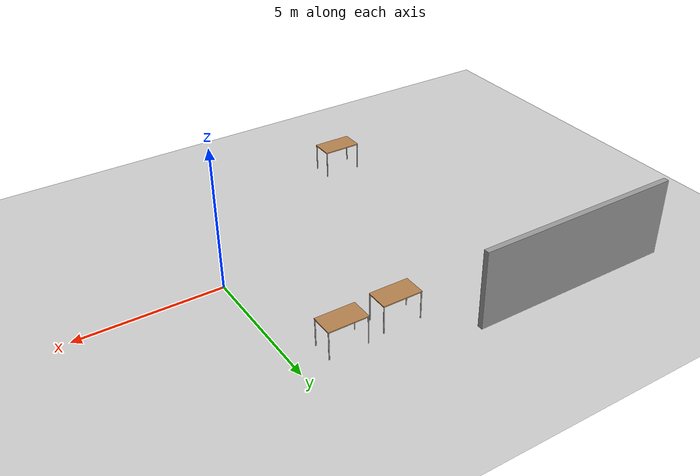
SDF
<sdf version="1.7">
 <world name="default">
  <model name="ground_plane">
   <static>1</static>
   <link name="link">
    <collision name="collision">
     <geometry><plane><normal>0 0 1</normal><size>100 100</size></plane></geometry>
     <surface><friction><ode><mu>100</mu><mu2>50</mu2></ode></friction></surface>
    </collision>
    <visual name="visual">
     <cast_shadows>0</cast_shadows>
     <geometry><plane><normal>0 0 1</normal><size>100 100</size></plane></geometry>
     <material>
      <script><uri>file://media/materials/scripts/gazebo.material</uri><name>Gazebo/Grey</name></script>
     </material>
    </visual>
   </link>
  </model>
  <model name="table">
   <static>0</static>
   <link name="link">
    <collision name="surface">
     <pose>0 0 1 0 -0 0</pose>
     <geometry><box><size>1.5 0.8 0.03</size></box></geometry>
     <surface><friction><ode><mu>0.6</mu><mu2>0.6</mu2></ode></friction></surface>
    </collision>
    <visual name="visual1">
     <pose>0 0 1 0 -0 0</pose>
     <geometry><box><size>1.4 0.8 0.04</size></box></geometry>
     <material>
      <script><uri>file://media/materials/scripts/gazebo.material</uri><name>Gazebo/Wood</name></script>
     </material>
    </visual>
    <collision name="front_left_leg">
     <pose>0.68 0.38 0.5 0 -0 0</pose>
     <geometry><cylinder><radius>0.02</radius><length>1</length></cylinder></geometry>
    </collision>
    <visual name="front_left_leg">
     <pose>0.68 0.38 0.5 0 -0 0</pose>
     <geometry><cylinder><radius>0.02</radius><length>1</length></cylinder></geometry>
     <material>
      <script><uri>file://media/materials/scripts/gazebo.material</uri><name>Gazebo/Grey</name></script>
     </material>
    </visual>
    <collision name="front_right_leg">
     <pose>0.68 -0.38 0.5 0 -0 0</pose>
     <geometry><cylinder><radius>0.02</radius><length>1</length></cylinder></geometry>
    </collision>
    <visual name="front_right_leg">
     <pose>0.68 -0.38 0.5 0 -0 0</pose>
     <geometry><cylinder><radius>0.02</radius><length>1</length></cylinder></geometry>
     <material>
      <script><uri>file://media/materials/scripts/gazebo.material</uri><name>Gazebo/Grey</name></script>
     </material>
    </visual>
    <collision name="back_right_leg">
     <pose>-0.68 -0.38 0.5 0 -0 0</pose>
     <geometry><cylinder><radius>0.02</radius><length>1</length></cylinder></geometry>
    </collision>
    <visual name="back_right_leg">
     <pose>-0.68 -0.38 0.5 0 -0 0</pose>
     <geometry><cylinder><radius>0.02</radius><length>1</length></cylinder></geometry>
     <material>
      <script><uri>file://media/materials/scripts/gazebo.material</uri><name>Gazebo/Grey</name></script>
     </material>
    </visual>
    <collision name="back_left_leg">
     <pose>-0.68 0.38 0.5 0 -0 0</pose>
     <geometry><cylinder><radius>0.02</radius><length>1</length></cylinder></geometry>
    </collision>
    <visual name="back_left_leg">
     <pose>-0.68 0.38 0.5 0 -0 0</pose>
     <geometry><cylinder><radius>0.02</radius><length>1</length></cylinder></geometry>
     <material>
      <script><uri>file://media/materials/scripts/gazebo.material</uri><name>Gazebo/Grey</name></script>
     </material>
    </visual>
    <inertial>
     <inertia><ixx>1</ixx><ixy>0</ixy><ixz>0</ixz><iyy>1</iyy><iyz>0</iyz><izz>1</izz></inertia>
     <mass>1</mass>
    </inertial>
   </link>
   <pose>-1.68201 4.48681 -9e-06 0 -1e-06 0</pose>
  </model>
  <model name="table_0">
   <static>0</static>
   <link name="link">
    <collision name="surface">
     <pose>0 0 1 0 -0 0</pose>
     <geometry><box><size>1.5 0.8 0.03</size></box></geometry>
     <surface><friction><ode><mu>0.6</mu><mu2>0.6</mu2></ode></friction></surface>
    </collision>
    <visual name="visual1">
     <pose>0 0 1 0 -0 0</pose>
     <geometry><box><size>1.4 0.8 0.04</size></box></geometry>
     <material>
      <script><uri>file://media/materials/scripts/gazebo.material</uri><name>Gazebo/Wood</name></script>
     </material>
    </visual>
    <collision name="front_left_leg">
     <pose>0.68 0.38 0.5 0 -0 0</pose>
     <geometry><cylinder><radius>0.02</radius><length>1</length></cylinder></geometry>
    </collision>
    <visual name="front_left_leg">
     <pose>0.68 0.38 0.5 0 -0 0</pose>
     <geometry><cylinder><radius>0.02</radius><length>1</length></cylinder></geometry>
     <material>
      <script><uri>file://media/materials/scripts/gazebo.material</uri><name>Gazebo/Grey</name></script>
     </material>
    </visual>
    <collision name="front_right_leg">
     <pose>0.68 -0.38 0.5 0 -0 0</pose>
     <geometry><cylinder><radius>0.02</radius><length>1</length></cylinder></geometry>
    </collision>
    <visual name="front_right_leg">
     <pose>0.68 -0.38 0.5 0 -0 0</pose>
     <geometry><cylinder><radius>0.02</radius><length>1</length></cylinder></geometry>
     <material>
      <script><uri>file://media/materials/scripts/gazebo.material</uri><name>Gazebo/Grey</name></script>
     </material>
    </visual>
    <collision name="back_right_leg">
     <pose>-0.68 -0.38 0.5 0 -0 0</pose>
     <geometry><cylinder><radius>0.02</radius><length>1</length></cylinder></geometry>
    </collision>
    <visual name="back_right_leg">
     <pose>-0.68 -0.38 0.5 0 -0 0</pose>
     <geometry><cylinder><radius>0.02</radius><length>1</length></cylinder></geometry>
     <material>
      <script><uri>file://media/materials/scripts/gazebo.material</uri><name>Gazebo/Grey</name></script>
     </material>
    </visual>
    <collision name="back_left_leg">
     <pose>-0.68 0.38 0.5 0 -0 0</pose>
     <geometry><cylinder><radius>0.02</radius><length>1</length></cylinder></geometry>
    </collision>
    <visual name="back_left_leg">
     <pose>-0.68 0.38 0.5 0 -0 0</pose>
     <geometry><cylinder><radius>0.02</radius><length>1</length></cylinder></geometry>
     <material>
      <script><uri>file://media/materials/scripts/gazebo.material</uri><name>Gazebo/Grey</name></script>
     </material>
    </visual>
    <inertial>
     <inertia><ixx>1</ixx><ixy>0</ixy><ixz>0</ixz><iyy>1</iyy><iyz>0</iyz><izz>1</izz></inertia>
     <mass>1</mass>
    </inertial>
   </link>
   <pose>-3.67259 4.36128 -1e-06 0 1e-06 0</pose>
  </model>
  <model name="table_0_clone">
   <static>0</static>
   <link name="link">
    <collision name="surface">
     <pose>0 0 1 0 -0 0</pose>
     <geometry><box><size>1.5 0.8 0.03</size></box></geometry>
     <surface><friction><ode><mu>0.6</mu><mu2>0.6</mu2></ode></friction></surface>
    </collision>
    <visual name="visual1">
     <pose>0 0 1 0 -0 0</pose>
     <geometry><box><size>1.4 0.8 0.04</size></box></geometry>
     <material>
      <script><uri>file://media/materials/scripts/gazebo.material</uri><name>Gazebo/Wood</name></script>
     </material>
    </visual>
    <collision name="front_left_leg">
     <pose>0.68 0.38 0.5 0 -0 0</pose>
     <geometry><cylinder><radius>0.02</radius><length>1</length></cylinder></geometry>
    </collision>
    <visual name="front_left_leg">
     <pose>0.68 0.38 0.5 0 -0 0</pose>
     <geometry><cylinder><radius>0.02</radius><length>1</length></cylinder></geometry>
     <material>
      <script><uri>file://media/materials/scripts/gazebo.material</uri><name>Gazebo/Grey</name></script>
     </material>
    </visual>
    <collision name="front_right_leg">
     <pose>0.68 -0.38 0.5 0 -0 0</pose>
     <geometry><cylinder><radius>0.02</radius><length>1</length></cylinder></geometry>
    </collision>
    <visual name="front_right_leg">
     <pose>0.68 -0.38 0.5 0 -0 0</pose>
     <geometry><cylinder><radius>0.02</radius><length>1</length></cylinder></geometry>
     <material>
      <script><uri>file://media/materials/scripts/gazebo.material</uri><name>Gazebo/Grey</name></script>
     </material>
    </visual>
    <collision name="back_right_leg">
     <pose>-0.68 -0.38 0.5 0 -0 0</pose>
     <geometry><cylinder><radius>0.02</radius><length>1</length></cylinder></geometry>
    </collision>
    <visual name="back_right_leg">
     <pose>-0.68 -0.38 0.5 0 -0 0</pose>
     <geometry><cylinder><radius>0.02</radius><length>1</length></cylinder></geometry>
     <material>
      <script><uri>file://media/materials/scripts/gazebo.material</uri><name>Gazebo/Grey</name></script>
     </material>
    </visual>
    <collision name="back_left_leg">
     <pose>-0.68 0.38 0.5 0 -0 0</pose>
     <geometry><cylinder><radius>0.02</radius><length>1</length></cylinder></geometry>
    </collision>
    <visual name="back_left_leg">
     <pose>-0.68 0.38 0.5 0 -0 0</pose>
     <geometry><cylinder><radius>0.02</radius><length>1</length></cylinder></geometry>
     <material>
      <script><uri>file://media/materials/scripts/gazebo.material</uri><name>Gazebo/Grey</name></script>
     </material>
    </visual>
    <inertial>
     <inertia><ixx>1</ixx><ixy>0</ixy><ixz>0</ixz><iyy>1</iyy><iyz>0</iyz><izz>1</izz></inertia>
     <mass>1</mass>
    </inertial>
   </link>
   <pose>-7.21172 -4.70427 -1e-06 0 1e-06 0</pose>
  </model>
  <model name="grey_wall">
   <static>1</static>
   <link name="link">
    <pose>0 0 1.4 0 -0 0</pose>
    <collision name="collision"><geometry><box><size>7.5 0.2 2.8</size></box></geometry></collision>
    <visual name="visual">
     <cast_shadows>0</cast_shadows>
     <geometry><box><size>7.5 0.2 2.8</size></box></geometry>
     <material>
      <script>
       <uri>model://grey_wall/materials/scripts</uri>
       <uri>model://grey_wall/materials/textures</uri>
       <name>vrc/grey_wall</name>
      </script>
     </material>
    </visual>
   </link>
   <pose>-9.31408 6.1237 0 0 -0 0</pose>
  </model>
 </world>
</sdf>
